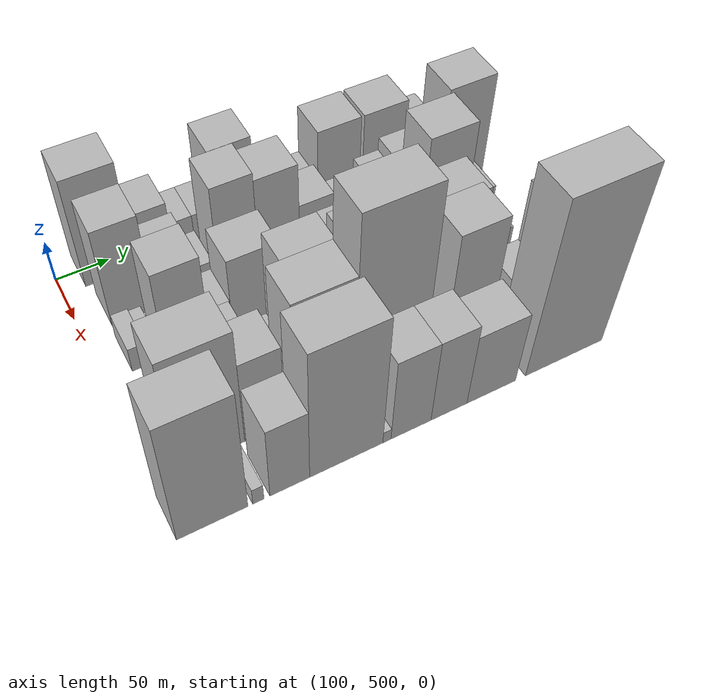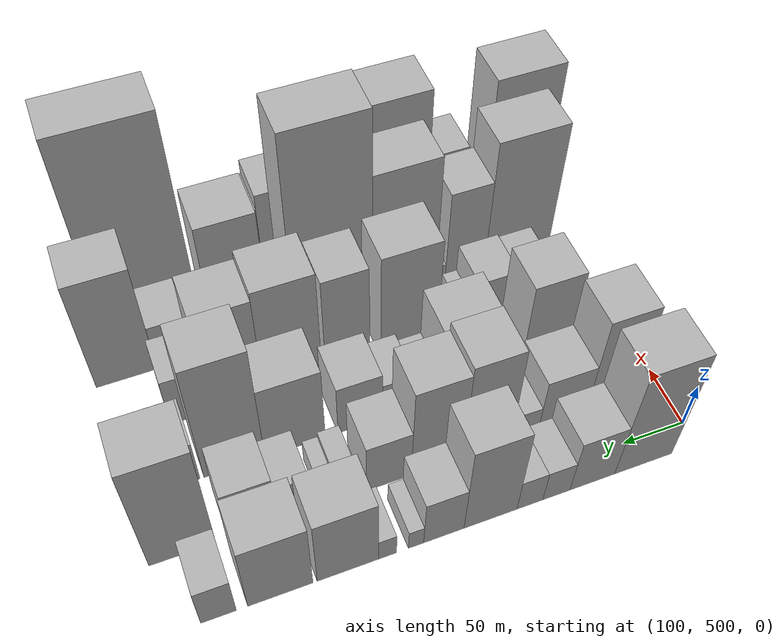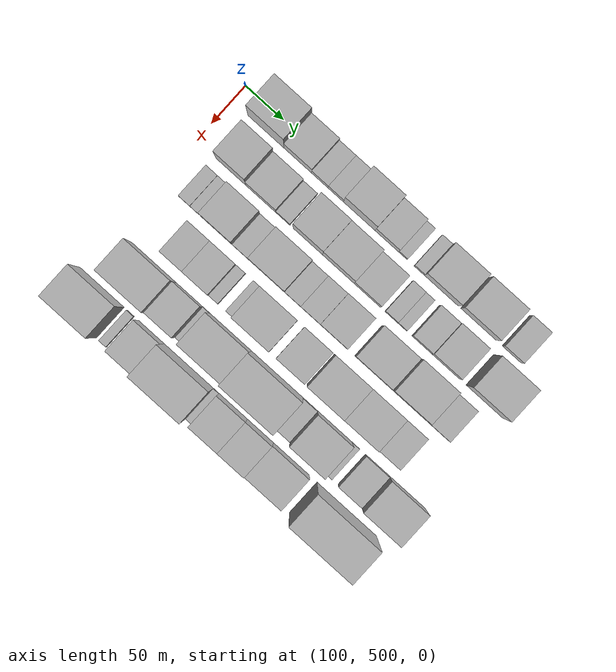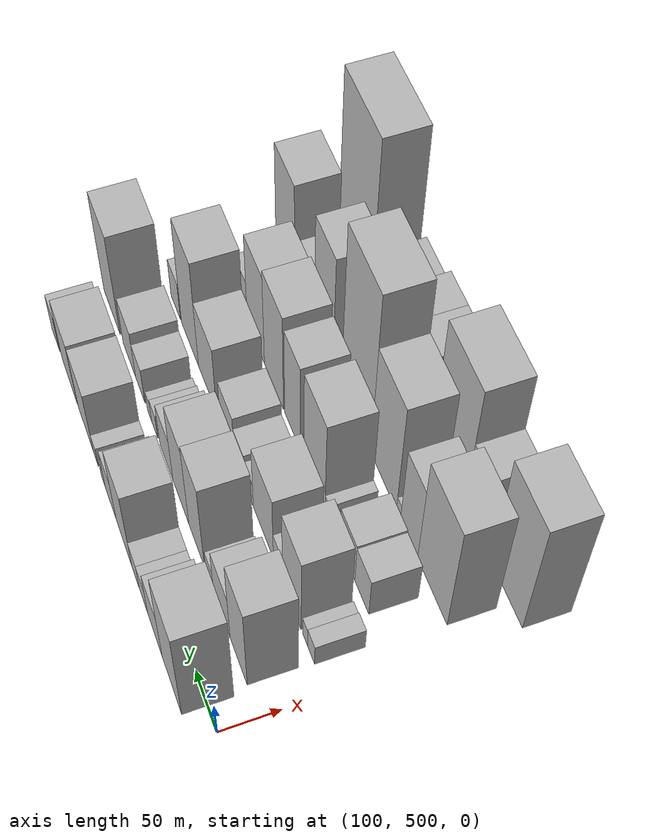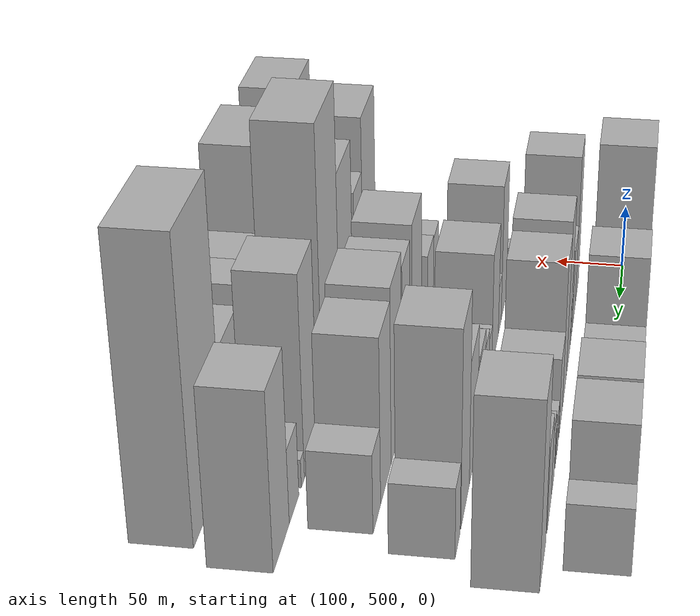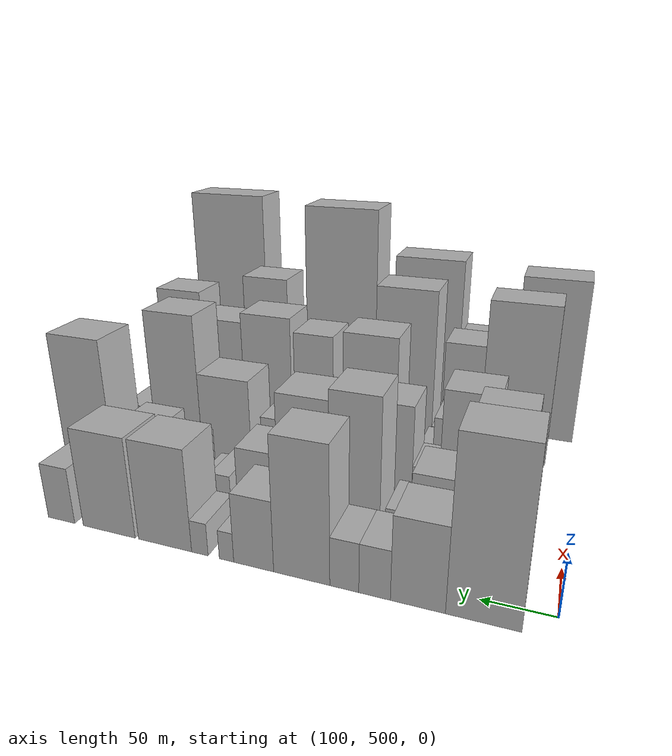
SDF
<sdf version="1.6">
 <world name="default">
  <model name="building_42">
   <static>1</static>
   <pose>100.0000 544.7745 0 0.000000 0.000000 0.000000</pose>
   <link name="link">
    <pose>0 0 66.00 0 0 0</pose>
    <collision name="collision"><geometry><box><size>40.0000 47.5665 132.0000</size></box></geometry></collision>
    <visual name="visual">
     <cast_shadows>0</cast_shadows>
     <geometry><box><size>40.0000 47.5665 132.0000</size></box></geometry>
     <material>
      <script>
       <uri>model://HANNAS_wall/materials/scripts</uri>
       <uri>model://HANNAS_wall/materials/textures</uri>
       <name>vrc/HANNAS_wall</name>
      </script>
     </material>
    </visual>
   </link>
  </model>
  <model name="building_43">
   <static>1</static>
   <pose>100.0000 586.7357 0 0.000000 0.000000 0.000000</pose>
   <link name="link">
    <pose>0 0 33.00 0 0 0</pose>
    <collision name="collision"><geometry><box><size>40.0000 36.3558 66.0000</size></box></geometry></collision>
    <visual name="visual">
     <cast_shadows>0</cast_shadows>
     <geometry><box><size>40.0000 36.3558 66.0000</size></box></geometry>
     <material>
      <script>
       <uri>model://HANNAS_wall/materials/scripts</uri>
       <uri>model://HANNAS_wall/materials/textures</uri>
       <name>vrc/HANNAS_wall</name>
      </script>
     </material>
    </visual>
   </link>
  </model>
  <model name="building_44">
   <static>1</static>
   <pose>100.0000 615.7609 0 0.000000 0.000000 0.000000</pose>
   <link name="link">
    <pose>0 0 19.50 0 0 0</pose>
    <collision name="collision"><geometry><box><size>40.0000 21.6947 39.0000</size></box></geometry></collision>
    <visual name="visual">
     <cast_shadows>0</cast_shadows>
     <geometry><box><size>40.0000 21.6947 39.0000</size></box></geometry>
     <material>
      <script>
       <uri>model://HANNAS_wall/materials/scripts</uri>
       <uri>model://HANNAS_wall/materials/textures</uri>
       <name>vrc/HANNAS_wall</name>
      </script>
     </material>
    </visual>
   </link>
  </model>
  <model name="building_45">
   <static>1</static>
   <pose>100.0000 636.8587 0 0.000000 0.000000 0.000000</pose>
   <link name="link">
    <pose>0 0 19.50 0 0 0</pose>
    <collision name="collision"><geometry><box><size>40.0000 20.5008 39.0000</size></box></geometry></collision>
    <visual name="visual">
     <cast_shadows>0</cast_shadows>
     <geometry><box><size>40.0000 20.5008 39.0000</size></box></geometry>
     <material>
      <script>
       <uri>model://HANNAS_wall/materials/scripts</uri>
       <uri>model://HANNAS_wall/materials/textures</uri>
       <name>vrc/HANNAS_wall</name>
      </script>
     </material>
    </visual>
   </link>
  </model>
  <model name="building_46">
   <static>1</static>
   <pose>100.0000 667.8259 0 0.000000 0.000000 0.000000</pose>
   <link name="link">
    <pose>0 0 54.00 0 0 0</pose>
    <collision name="collision"><geometry><box><size>40.0000 41.4337 108.0000</size></box></geometry></collision>
    <visual name="visual">
     <cast_shadows>0</cast_shadows>
     <geometry><box><size>40.0000 41.4337 108.0000</size></box></geometry>
     <material>
      <script>
       <uri>model://HANNAS_wall/materials/scripts</uri>
       <uri>model://HANNAS_wall/materials/textures</uri>
       <name>vrc/HANNAS_wall</name>
      </script>
     </material>
    </visual>
   </link>
  </model>
  <model name="building_47">
   <static>1</static>
   <pose>100.0000 703.9702 0 0.000000 0.000000 0.000000</pose>
   <link name="link">
    <pose>0 0 28.50 0 0 0</pose>
    <collision name="collision"><geometry><box><size>40.0000 30.8548 57.0000</size></box></geometry></collision>
    <visual name="visual">
     <cast_shadows>0</cast_shadows>
     <geometry><box><size>40.0000 30.8548 57.0000</size></box></geometry>
     <material>
      <script>
       <uri>model://HANNAS_wall/materials/scripts</uri>
       <uri>model://HANNAS_wall/materials/textures</uri>
       <name>vrc/HANNAS_wall</name>
      </script>
     </material>
    </visual>
   </link>
  </model>
  <model name="building_48">
   <static>1</static>
   <pose>100.0000 725.1432 0 0.000000 0.000000 0.000000</pose>
   <link name="link">
    <pose>0 0 12.00 0 0 0</pose>
    <collision name="collision"><geometry><box><size>40.0000 11.4913 24.0000</size></box></geometry></collision>
    <visual name="visual">
     <cast_shadows>0</cast_shadows>
     <geometry><box><size>40.0000 11.4913 24.0000</size></box></geometry>
     <material>
      <script>
       <uri>model://HANNAS_wall/materials/scripts</uri>
       <uri>model://HANNAS_wall/materials/textures</uri>
       <name>vrc/HANNAS_wall</name>
      </script>
     </material>
    </visual>
   </link>
  </model>
  <model name="building_49">
   <static>1</static>
   <pose>100.0000 746.6325 0 0.000000 0.000000 0.000000</pose>
   <link name="link">
    <pose>0 0 13.50 0 0 0</pose>
    <collision name="collision"><geometry><box><size>40.0000 13.4873 27.0000</size></box></geometry></collision>
    <visual name="visual">
     <cast_shadows>0</cast_shadows>
     <geometry><box><size>40.0000 13.4873 27.0000</size></box></geometry>
     <material>
      <script>
       <uri>model://HANNAS_wall/materials/scripts</uri>
       <uri>model://HANNAS_wall/materials/textures</uri>
       <name>vrc/HANNAS_wall</name>
      </script>
     </material>
    </visual>
   </link>
  </model>
  <model name="building_50">
   <static>1</static>
   <pose>100.0000 775.8892 0 0.000000 0.000000 0.000000</pose>
   <link name="link">
    <pose>0 0 42.00 0 0 0</pose>
    <collision name="collision"><geometry><box><size>40.0000 45.0261 84.0000</size></box></geometry></collision>
    <visual name="visual">
     <cast_shadows>0</cast_shadows>
     <geometry><box><size>40.0000 45.0261 84.0000</size></box></geometry>
     <material>
      <script>
       <uri>model://HANNAS_wall/materials/scripts</uri>
       <uri>model://HANNAS_wall/materials/textures</uri>
       <name>vrc/HANNAS_wall</name>
      </script>
     </material>
    </visual>
   </link>
  </model>
  <model name="building_51">
   <static>1</static>
   <pose>100.0000 824.7497 0 0.000000 0.000000 0.000000</pose>
   <link name="link">
    <pose>0 0 42.00 0 0 0</pose>
    <collision name="collision"><geometry><box><size>40.0000 46.6949 84.0000</size></box></geometry></collision>
    <visual name="visual">
     <cast_shadows>0</cast_shadows>
     <geometry><box><size>40.0000 46.6949 84.0000</size></box></geometry>
     <material>
      <script>
       <uri>model://HANNAS_wall/materials/scripts</uri>
       <uri>model://HANNAS_wall/materials/textures</uri>
       <name>vrc/HANNAS_wall</name>
      </script>
     </material>
    </visual>
   </link>
  </model>
  <model name="building_52">
   <static>1</static>
   <pose>100.0000 868.5362 0 0.000000 0.000000 0.000000</pose>
   <link name="link">
    <pose>0 0 24.00 0 0 0</pose>
    <collision name="collision"><geometry><box><size>40.0000 24.8780 48.0000</size></box></geometry></collision>
    <visual name="visual">
     <cast_shadows>0</cast_shadows>
     <geometry><box><size>40.0000 24.8780 48.0000</size></box></geometry>
     <material>
      <script>
       <uri>model://HANNAS_wall/materials/scripts</uri>
       <uri>model://HANNAS_wall/materials/textures</uri>
       <name>vrc/HANNAS_wall</name>
      </script>
     </material>
    </visual>
   </link>
  </model>
  <model name="building_92">
   <static>1</static>
   <pose>152.0000 546.1278 0 0.000000 0.000000 0.000000</pose>
   <link name="link">
    <pose>0 0 60.00 0 0 0</pose>
    <collision name="collision"><geometry><box><size>40.0000 39.5461 120.0000</size></box></geometry></collision>
    <visual name="visual">
     <cast_shadows>0</cast_shadows>
     <geometry><box><size>40.0000 39.5461 120.0000</size></box></geometry>
     <material>
      <script>
       <uri>model://HANNAS_wall/materials/scripts</uri>
       <uri>model://HANNAS_wall/materials/textures</uri>
       <name>vrc/HANNAS_wall</name>
      </script>
     </material>
    </visual>
   </link>
  </model>
  <model name="building_93">
   <static>1</static>
   <pose>152.0000 585.5592 0 0.000000 0.000000 0.000000</pose>
   <link name="link">
    <pose>0 0 33.00 0 0 0</pose>
    <collision name="collision"><geometry><box><size>40.0000 39.3168 66.0000</size></box></geometry></collision>
    <visual name="visual">
     <cast_shadows>0</cast_shadows>
     <geometry><box><size>40.0000 39.3168 66.0000</size></box></geometry>
     <material>
      <script>
       <uri>model://HANNAS_wall/materials/scripts</uri>
       <uri>model://HANNAS_wall/materials/textures</uri>
       <name>vrc/HANNAS_wall</name>
      </script>
     </material>
    </visual>
   </link>
  </model>
  <model name="building_94">
   <static>1</static>
   <pose>152.0000 614.4272 0 0.000000 0.000000 0.000000</pose>
   <link name="link">
    <pose>0 0 16.50 0 0 0</pose>
    <collision name="collision"><geometry><box><size>40.0000 18.4192 33.0000</size></box></geometry></collision>
    <visual name="visual">
     <cast_shadows>0</cast_shadows>
     <geometry><box><size>40.0000 18.4192 33.0000</size></box></geometry>
     <material>
      <script>
       <uri>model://HANNAS_wall/materials/scripts</uri>
       <uri>model://HANNAS_wall/materials/textures</uri>
       <name>vrc/HANNAS_wall</name>
      </script>
     </material>
    </visual>
   </link>
  </model>
  <model name="building_95">
   <static>1</static>
   <pose>152.0000 647.0795 0 0.000000 0.000000 0.000000</pose>
   <link name="link">
    <pose>0 0 60.00 0 0 0</pose>
    <collision name="collision"><geometry><box><size>40.0000 38.8852 120.0000</size></box></geometry></collision>
    <visual name="visual">
     <cast_shadows>0</cast_shadows>
     <geometry><box><size>40.0000 38.8852 120.0000</size></box></geometry>
     <material>
      <script>
       <uri>model://HANNAS_wall/materials/scripts</uri>
       <uri>model://HANNAS_wall/materials/textures</uri>
       <name>vrc/HANNAS_wall</name>
      </script>
     </material>
    </visual>
   </link>
  </model>
  <model name="building_96">
   <static>1</static>
   <pose>152.0000 687.1343 0 0.000000 0.000000 0.000000</pose>
   <link name="link">
    <pose>0 0 55.50 0 0 0</pose>
    <collision name="collision"><geometry><box><size>40.0000 41.2244 111.0000</size></box></geometry></collision>
    <visual name="visual">
     <cast_shadows>0</cast_shadows>
     <geometry><box><size>40.0000 41.2244 111.0000</size></box></geometry>
     <material>
      <script>
       <uri>model://HANNAS_wall/materials/scripts</uri>
       <uri>model://HANNAS_wall/materials/textures</uri>
       <name>vrc/HANNAS_wall</name>
      </script>
     </material>
    </visual>
   </link>
  </model>
  <model name="building_97">
   <static>1</static>
   <pose>152.0000 725.1940 0 0.000000 0.000000 0.000000</pose>
   <link name="link">
    <pose>0 0 30.00 0 0 0</pose>
    <collision name="collision"><geometry><box><size>40.0000 34.8949 60.0000</size></box></geometry></collision>
    <visual name="visual">
     <cast_shadows>0</cast_shadows>
     <geometry><box><size>40.0000 34.8949 60.0000</size></box></geometry>
     <material>
      <script>
       <uri>model://HANNAS_wall/materials/scripts</uri>
       <uri>model://HANNAS_wall/materials/textures</uri>
       <name>vrc/HANNAS_wall</name>
      </script>
     </material>
    </visual>
   </link>
  </model>
  <model name="building_98">
   <static>1</static>
   <pose>152.0000 756.9708 0 0.000000 0.000000 0.000000</pose>
   <link name="link">
    <pose>0 0 16.50 0 0 0</pose>
    <collision name="collision"><geometry><box><size>40.0000 16.6586 33.0000</size></box></geometry></collision>
    <visual name="visual">
     <cast_shadows>0</cast_shadows>
     <geometry><box><size>40.0000 16.6586 33.0000</size></box></geometry>
     <material>
      <script>
       <uri>model://HANNAS_wall/materials/scripts</uri>
       <uri>model://HANNAS_wall/materials/textures</uri>
       <name>vrc/HANNAS_wall</name>
      </script>
     </material>
    </visual>
   </link>
  </model>
  <model name="building_99">
   <static>1</static>
   <pose>152.0000 771.2315 0 0.000000 0.000000 0.000000</pose>
   <link name="link">
    <pose>0 0 13.50 0 0 0</pose>
    <collision name="collision"><geometry><box><size>40.0000 11.8629 27.0000</size></box></geometry></collision>
    <visual name="visual">
     <cast_shadows>0</cast_shadows>
     <geometry><box><size>40.0000 11.8629 27.0000</size></box></geometry>
     <material>
      <script>
       <uri>model://HANNAS_wall/materials/scripts</uri>
       <uri>model://HANNAS_wall/materials/textures</uri>
       <name>vrc/HANNAS_wall</name>
      </script>
     </material>
    </visual>
   </link>
  </model>
  <model name="building_100">
   <static>1</static>
   <pose>152.0000 797.1972 0 0.000000 0.000000 0.000000</pose>
   <link name="link">
    <pose>0 0 24.00 0 0 0</pose>
    <collision name="collision"><geometry><box><size>40.0000 26.0684 48.0000</size></box></geometry></collision>
    <visual name="visual">
     <cast_shadows>0</cast_shadows>
     <geometry><box><size>40.0000 26.0684 48.0000</size></box></geometry>
     <material>
      <script>
       <uri>model://HANNAS_wall/materials/scripts</uri>
       <uri>model://HANNAS_wall/materials/textures</uri>
       <name>vrc/HANNAS_wall</name>
      </script>
     </material>
    </visual>
   </link>
  </model>
  <model name="building_101">
   <static>1</static>
   <pose>152.0000 828.4185 0 0.000000 0.000000 0.000000</pose>
   <link name="link">
    <pose>0 0 31.50 0 0 0</pose>
    <collision name="collision"><geometry><box><size>40.0000 36.3743 63.0000</size></box></geometry></collision>
    <visual name="visual">
     <cast_shadows>0</cast_shadows>
     <geometry><box><size>40.0000 36.3743 63.0000</size></box></geometry>
     <material>
      <script>
       <uri>model://HANNAS_wall/materials/scripts</uri>
       <uri>model://HANNAS_wall/materials/textures</uri>
       <name>vrc/HANNAS_wall</name>
      </script>
     </material>
    </visual>
   </link>
  </model>
  <model name="building_102">
   <static>1</static>
   <pose>152.0000 879.6352 0 0.000000 0.000000 0.000000</pose>
   <link name="link">
    <pose>0 0 66.00 0 0 0</pose>
    <collision name="collision"><geometry><box><size>40.0000 48.0590 132.0000</size></box></geometry></collision>
    <visual name="visual">
     <cast_shadows>0</cast_shadows>
     <geometry><box><size>40.0000 48.0590 132.0000</size></box></geometry>
     <material>
      <script>
       <uri>model://HANNAS_wall/materials/scripts</uri>
       <uri>model://HANNAS_wall/materials/textures</uri>
       <name>vrc/HANNAS_wall</name>
      </script>
     </material>
    </visual>
   </link>
  </model>
  <model name="building_144">
   <static>1</static>
   <pose>204.0000 532.4353 0 0.000000 0.000000 0.000000</pose>
   <link name="link">
    <pose>0 0 15.00 0 0 0</pose>
    <collision name="collision"><geometry><box><size>40.0000 15.2002 30.0000</size></box></geometry></collision>
    <visual name="visual">
     <cast_shadows>0</cast_shadows>
     <geometry><box><size>40.0000 15.2002 30.0000</size></box></geometry>
     <material>
      <script>
       <uri>model://HANNAS_wall/materials/scripts</uri>
       <uri>model://HANNAS_wall/materials/textures</uri>
       <name>vrc/HANNAS_wall</name>
      </script>
     </material>
    </visual>
   </link>
  </model>
  <model name="building_145">
   <static>1</static>
   <pose>204.0000 545.6412 0 0.000000 0.000000 0.000000</pose>
   <link name="link">
    <pose>0 0 13.50 0 0 0</pose>
    <collision name="collision"><geometry><box><size>40.0000 11.2116 27.0000</size></box></geometry></collision>
    <visual name="visual">
     <cast_shadows>0</cast_shadows>
     <geometry><box><size>40.0000 11.2116 27.0000</size></box></geometry>
     <material>
      <script>
       <uri>model://HANNAS_wall/materials/scripts</uri>
       <uri>model://HANNAS_wall/materials/textures</uri>
       <name>vrc/HANNAS_wall</name>
      </script>
     </material>
    </visual>
   </link>
  </model>
  <model name="building_146">
   <static>1</static>
   <pose>204.0000 574.9193 0 0.000000 0.000000 0.000000</pose>
   <link name="link">
    <pose>0 0 54.00 0 0 0</pose>
    <collision name="collision"><geometry><box><size>40.0000 41.3444 108.0000</size></box></geometry></collision>
    <visual name="visual">
     <cast_shadows>0</cast_shadows>
     <geometry><box><size>40.0000 41.3444 108.0000</size></box></geometry>
     <material>
      <script>
       <uri>model://HANNAS_wall/materials/scripts</uri>
       <uri>model://HANNAS_wall/materials/textures</uri>
       <name>vrc/HANNAS_wall</name>
      </script>
     </material>
    </visual>
   </link>
  </model>
  <model name="building_147">
   <static>1</static>
   <pose>204.0000 606.1920 0 0.000000 0.000000 0.000000</pose>
   <link name="link">
    <pose>0 0 19.50 0 0 0</pose>
    <collision name="collision"><geometry><box><size>40.0000 21.2011 39.0000</size></box></geometry></collision>
    <visual name="visual">
     <cast_shadows>0</cast_shadows>
     <geometry><box><size>40.0000 21.2011 39.0000</size></box></geometry>
     <material>
      <script>
       <uri>model://HANNAS_wall/materials/scripts</uri>
       <uri>model://HANNAS_wall/materials/textures</uri>
       <name>vrc/HANNAS_wall</name>
      </script>
     </material>
    </visual>
   </link>
  </model>
  <model name="building_148">
   <static>1</static>
   <pose>204.0000 640.3165 0 0.000000 0.000000 0.000000</pose>
   <link name="link">
    <pose>0 0 45.00 0 0 0</pose>
    <collision name="collision"><geometry><box><size>40.0000 47.0480 90.0000</size></box></geometry></collision>
    <visual name="visual">
     <cast_shadows>0</cast_shadows>
     <geometry><box><size>40.0000 47.0480 90.0000</size></box></geometry>
     <material>
      <script>
       <uri>model://HANNAS_wall/materials/scripts</uri>
       <uri>model://HANNAS_wall/materials/textures</uri>
       <name>vrc/HANNAS_wall</name>
      </script>
     </material>
    </visual>
   </link>
  </model>
  <model name="building_149">
   <static>1</static>
   <pose>204.0000 674.3682 0 0.000000 0.000000 0.000000</pose>
   <link name="link">
    <pose>0 0 18.00 0 0 0</pose>
    <collision name="collision"><geometry><box><size>40.0000 21.0554 36.0000</size></box></geometry></collision>
    <visual name="visual">
     <cast_shadows>0</cast_shadows>
     <geometry><box><size>40.0000 21.0554 36.0000</size></box></geometry>
     <material>
      <script>
       <uri>model://HANNAS_wall/materials/scripts</uri>
       <uri>model://HANNAS_wall/materials/textures</uri>
       <name>vrc/HANNAS_wall</name>
      </script>
     </material>
    </visual>
   </link>
  </model>
  <model name="building_150">
   <static>1</static>
   <pose>204.0000 697.6759 0 0.000000 0.000000 0.000000</pose>
   <link name="link">
    <pose>0 0 22.50 0 0 0</pose>
    <collision name="collision"><geometry><box><size>40.0000 25.5600 45.0000</size></box></geometry></collision>
    <visual name="visual">
     <cast_shadows>0</cast_shadows>
     <geometry><box><size>40.0000 25.5600 45.0000</size></box></geometry>
     <material>
      <script>
       <uri>model://HANNAS_wall/materials/scripts</uri>
       <uri>model://HANNAS_wall/materials/textures</uri>
       <name>vrc/HANNAS_wall</name>
      </script>
     </material>
    </visual>
   </link>
  </model>
  <model name="building_151">
   <static>1</static>
   <pose>204.0000 728.1979 0 0.000000 0.000000 0.000000</pose>
   <link name="link">
    <pose>0 0 30.00 0 0 0</pose>
    <collision name="collision"><geometry><box><size>40.0000 35.4840 60.0000</size></box></geometry></collision>
    <visual name="visual">
     <cast_shadows>0</cast_shadows>
     <geometry><box><size>40.0000 35.4840 60.0000</size></box></geometry>
     <material>
      <script>
       <uri>model://HANNAS_wall/materials/scripts</uri>
       <uri>model://HANNAS_wall/materials/textures</uri>
       <name>vrc/HANNAS_wall</name>
      </script>
     </material>
    </visual>
   </link>
  </model>
  <model name="building_152">
   <static>1</static>
   <pose>204.0000 779.5490 0 0.000000 0.000000 0.000000</pose>
   <link name="link">
    <pose>0 0 45.00 0 0 0</pose>
    <collision name="collision"><geometry><box><size>40.0000 47.2181 90.0000</size></box></geometry></collision>
    <visual name="visual">
     <cast_shadows>0</cast_shadows>
     <geometry><box><size>40.0000 47.2181 90.0000</size></box></geometry>
     <material>
      <script>
       <uri>model://HANNAS_wall/materials/scripts</uri>
       <uri>model://HANNAS_wall/materials/textures</uri>
       <name>vrc/HANNAS_wall</name>
      </script>
     </material>
    </visual>
   </link>
  </model>
  <model name="building_153">
   <static>1</static>
   <pose>204.0000 826.4245 0 0.000000 0.000000 0.000000</pose>
   <link name="link">
    <pose>0 0 70.50 0 0 0</pose>
    <collision name="collision"><geometry><box><size>40.0000 46.5328 141.0000</size></box></geometry></collision>
    <visual name="visual">
     <cast_shadows>0</cast_shadows>
     <geometry><box><size>40.0000 46.5328 141.0000</size></box></geometry>
     <material>
      <script>
       <uri>model://HANNAS_wall/materials/scripts</uri>
       <uri>model://HANNAS_wall/materials/textures</uri>
       <name>vrc/HANNAS_wall</name>
      </script>
     </material>
    </visual>
   </link>
  </model>
  <model name="building_154">
   <static>1</static>
   <pose>204.0000 865.8947 0 0.000000 0.000000 0.000000</pose>
   <link name="link">
    <pose>0 0 25.50 0 0 0</pose>
    <collision name="collision"><geometry><box><size>40.0000 26.4077 51.0000</size></box></geometry></collision>
    <visual name="visual">
     <cast_shadows>0</cast_shadows>
     <geometry><box><size>40.0000 26.4077 51.0000</size></box></geometry>
     <material>
      <script>
       <uri>model://HANNAS_wall/materials/scripts</uri>
       <uri>model://HANNAS_wall/materials/textures</uri>
       <name>vrc/HANNAS_wall</name>
      </script>
     </material>
    </visual>
   </link>
  </model>
  <model name="building_197">
   <static>1</static>
   <pose>256.0000 563.2254 0 0.000000 0.000000 0.000000</pose>
   <link name="link">
    <pose>0 0 27.00 0 0 0</pose>
    <collision name="collision"><geometry><box><size>40.0000 29.3551 54.0000</size></box></geometry></collision>
    <visual name="visual">
     <cast_shadows>0</cast_shadows>
     <geometry><box><size>40.0000 29.3551 54.0000</size></box></geometry>
     <material>
      <script>
       <uri>model://HANNAS_wall/materials/scripts</uri>
       <uri>model://HANNAS_wall/materials/textures</uri>
       <name>vrc/HANNAS_wall</name>
      </script>
     </material>
    </visual>
   </link>
  </model>
  <model name="building_198">
   <static>1</static>
   <pose>256.0000 594.5798 0 0.000000 0.000000 0.000000</pose>
   <link name="link">
    <pose>0 0 28.50 0 0 0</pose>
    <collision name="collision"><geometry><box><size>40.0000 33.3536 57.0000</size></box></geometry></collision>
    <visual name="visual">
     <cast_shadows>0</cast_shadows>
     <geometry><box><size>40.0000 33.3536 57.0000</size></box></geometry>
     <material>
      <script>
       <uri>model://HANNAS_wall/materials/scripts</uri>
       <uri>model://HANNAS_wall/materials/textures</uri>
       <name>vrc/HANNAS_wall</name>
      </script>
     </material>
    </visual>
   </link>
  </model>
  <model name="building_199">
   <static>1</static>
   <pose>256.0000 617.4111 0 0.000000 0.000000 0.000000</pose>
   <link name="link">
    <pose>0 0 13.50 0 0 0</pose>
    <collision name="collision"><geometry><box><size>40.0000 12.3089 27.0000</size></box></geometry></collision>
    <visual name="visual">
     <cast_shadows>0</cast_shadows>
     <geometry><box><size>40.0000 12.3089 27.0000</size></box></geometry>
     <material>
      <script>
       <uri>model://HANNAS_wall/materials/scripts</uri>
       <uri>model://HANNAS_wall/materials/textures</uri>
       <name>vrc/HANNAS_wall</name>
      </script>
     </material>
    </visual>
   </link>
  </model>
  <model name="building_200">
   <static>1</static>
   <pose>256.0000 638.6388 0 0.000000 0.000000 0.000000</pose>
   <link name="link">
    <pose>0 0 10.50 0 0 0</pose>
    <collision name="collision"><geometry><box><size>40.0000 10.1466 21.0000</size></box></geometry></collision>
    <visual name="visual">
     <cast_shadows>0</cast_shadows>
     <geometry><box><size>40.0000 10.1466 21.0000</size></box></geometry>
     <material>
      <script>
       <uri>model://HANNAS_wall/materials/scripts</uri>
       <uri>model://HANNAS_wall/materials/textures</uri>
       <name>vrc/HANNAS_wall</name>
      </script>
     </material>
    </visual>
   </link>
  </model>
  <model name="building_201">
   <static>1</static>
   <pose>256.0000 667.7387 0 0.000000 0.000000 0.000000</pose>
   <link name="link">
    <pose>0 0 61.50 0 0 0</pose>
    <collision name="collision"><geometry><box><size>40.0000 48.0533 123.0000</size></box></geometry></collision>
    <visual name="visual">
     <cast_shadows>0</cast_shadows>
     <geometry><box><size>40.0000 48.0533 123.0000</size></box></geometry>
     <material>
      <script>
       <uri>model://HANNAS_wall/materials/scripts</uri>
       <uri>model://HANNAS_wall/materials/textures</uri>
       <name>vrc/HANNAS_wall</name>
      </script>
     </material>
    </visual>
   </link>
  </model>
  <model name="building_202">
   <static>1</static>
   <pose>256.0000 718.9880 0 0.000000 0.000000 0.000000</pose>
   <link name="link">
    <pose>0 0 58.50 0 0 0</pose>
    <collision name="collision"><geometry><box><size>40.0000 36.4452 117.0000</size></box></geometry></collision>
    <visual name="visual">
     <cast_shadows>0</cast_shadows>
     <geometry><box><size>40.0000 36.4452 117.0000</size></box></geometry>
     <material>
      <script>
       <uri>model://HANNAS_wall/materials/scripts</uri>
       <uri>model://HANNAS_wall/materials/textures</uri>
       <name>vrc/HANNAS_wall</name>
      </script>
     </material>
    </visual>
   </link>
  </model>
  <model name="building_203">
   <static>1</static>
   <pose>256.0000 763.7376 0 0.000000 0.000000 0.000000</pose>
   <link name="link">
    <pose>0 0 64.50 0 0 0</pose>
    <collision name="collision"><geometry><box><size>40.0000 47.0540 129.0000</size></box></geometry></collision>
    <visual name="visual">
     <cast_shadows>0</cast_shadows>
     <geometry><box><size>40.0000 47.0540 129.0000</size></box></geometry>
     <material>
      <script>
       <uri>model://HANNAS_wall/materials/scripts</uri>
       <uri>model://HANNAS_wall/materials/textures</uri>
       <name>vrc/HANNAS_wall</name>
      </script>
     </material>
    </visual>
   </link>
  </model>
  <model name="building_204">
   <static>1</static>
   <pose>256.0000 809.2545 0 0.000000 0.000000 0.000000</pose>
   <link name="link">
    <pose>0 0 60.00 0 0 0</pose>
    <collision name="collision"><geometry><box><size>40.0000 43.9799 120.0000</size></box></geometry></collision>
    <visual name="visual">
     <cast_shadows>0</cast_shadows>
     <geometry><box><size>40.0000 43.9799 120.0000</size></box></geometry>
     <material>
      <script>
       <uri>model://HANNAS_wall/materials/scripts</uri>
       <uri>model://HANNAS_wall/materials/textures</uri>
       <name>vrc/HANNAS_wall</name>
      </script>
     </material>
    </visual>
   </link>
  </model>
  <model name="building_205">
   <static>1</static>
   <pose>256.0000 846.2924 0 0.000000 0.000000 0.000000</pose>
   <link name="link">
    <pose>0 0 28.50 0 0 0</pose>
    <collision name="collision"><geometry><box><size>40.0000 30.0959 57.0000</size></box></geometry></collision>
    <visual name="visual">
     <cast_shadows>0</cast_shadows>
     <geometry><box><size>40.0000 30.0959 57.0000</size></box></geometry>
     <material>
      <script>
       <uri>model://HANNAS_wall/materials/scripts</uri>
       <uri>model://HANNAS_wall/materials/textures</uri>
       <name>vrc/HANNAS_wall</name>
      </script>
     </material>
    </visual>
   </link>
  </model>
  <model name="building_243">
   <static>1</static>
   <pose>308.0000 550.0282 0 0.000000 0.000000 0.000000</pose>
   <link name="link">
    <pose>0 0 73.50 0 0 0</pose>
    <collision name="collision"><geometry><box><size>40.0000 58.7847 147.0000</size></box></geometry></collision>
    <visual name="visual">
     <cast_shadows>0</cast_shadows>
     <geometry><box><size>40.0000 58.7847 147.0000</size></box></geometry>
     <material>
      <script>
       <uri>model://HANNAS_wall/materials/scripts</uri>
       <uri>model://HANNAS_wall/materials/textures</uri>
       <name>vrc/HANNAS_wall</name>
      </script>
     </material>
    </visual>
   </link>
  </model>
  <model name="building_244">
   <static>1</static>
   <pose>308.0000 597.0762 0 0.000000 0.000000 0.000000</pose>
   <link name="link">
    <pose>0 0 52.50 0 0 0</pose>
    <collision name="collision"><geometry><box><size>40.0000 35.3113 105.0000</size></box></geometry></collision>
    <visual name="visual">
     <cast_shadows>0</cast_shadows>
     <geometry><box><size>40.0000 35.3113 105.0000</size></box></geometry>
     <material>
      <script>
       <uri>model://HANNAS_wall/materials/scripts</uri>
       <uri>model://HANNAS_wall/materials/textures</uri>
       <name>vrc/HANNAS_wall</name>
      </script>
     </material>
    </visual>
   </link>
  </model>
  <model name="building_245">
   <static>1</static>
   <pose>308.0000 619.0148 0 0.000000 0.000000 0.000000</pose>
   <link name="link">
    <pose>0 0 10.50 0 0 0</pose>
    <collision name="collision"><geometry><box><size>40.0000 8.5657 21.0000</size></box></geometry></collision>
    <visual name="visual">
     <cast_shadows>0</cast_shadows>
     <geometry><box><size>40.0000 8.5657 21.0000</size></box></geometry>
     <material>
      <script>
       <uri>model://HANNAS_wall/materials/scripts</uri>
       <uri>model://HANNAS_wall/materials/textures</uri>
       <name>vrc/HANNAS_wall</name>
      </script>
     </material>
    </visual>
   </link>
  </model>
  <model name="building_246">
   <static>1</static>
   <pose>308.0000 650.8421 0 0.000000 0.000000 0.000000</pose>
   <link name="link">
    <pose>0 0 75.00 0 0 0</pose>
    <collision name="collision"><geometry><box><size>40.0000 55.0889 150.0000</size></box></geometry></collision>
    <visual name="visual">
     <cast_shadows>0</cast_shadows>
     <geometry><box><size>40.0000 55.0889 150.0000</size></box></geometry>
     <material>
      <script>
       <uri>model://HANNAS_wall/materials/scripts</uri>
       <uri>model://HANNAS_wall/materials/textures</uri>
       <name>vrc/HANNAS_wall</name>
      </script>
     </material>
    </visual>
   </link>
  </model>
  <model name="building_247">
   <static>1</static>
   <pose>308.0000 711.9428 0 0.000000 0.000000 0.000000</pose>
   <link name="link">
    <pose>0 0 108.00 0 0 0</pose>
    <collision name="collision"><geometry><box><size>40.0000 67.1124 216.0000</size></box></geometry></collision>
    <visual name="visual">
     <cast_shadows>0</cast_shadows>
     <geometry><box><size>40.0000 67.1124 216.0000</size></box></geometry>
     <material>
      <script>
       <uri>model://HANNAS_wall/materials/scripts</uri>
       <uri>model://HANNAS_wall/materials/textures</uri>
       <name>vrc/HANNAS_wall</name>
      </script>
     </material>
    </visual>
   </link>
  </model>
  <model name="building_248">
   <static>1</static>
   <pose>308.0000 755.2844 0 0.000000 0.000000 0.000000</pose>
   <link name="link">
    <pose>0 0 19.50 0 0 0</pose>
    <collision name="collision"><geometry><box><size>40.0000 19.5709 39.0000</size></box></geometry></collision>
    <visual name="visual">
     <cast_shadows>0</cast_shadows>
     <geometry><box><size>40.0000 19.5709 39.0000</size></box></geometry>
     <material>
      <script>
       <uri>model://HANNAS_wall/materials/scripts</uri>
       <uri>model://HANNAS_wall/materials/textures</uri>
       <name>vrc/HANNAS_wall</name>
      </script>
     </material>
    </visual>
   </link>
  </model>
  <model name="building_249">
   <static>1</static>
   <pose>308.0000 787.5312 0 0.000000 0.000000 0.000000</pose>
   <link name="link">
    <pose>0 0 73.50 0 0 0</pose>
    <collision name="collision"><geometry><box><size>40.0000 44.9226 147.0000</size></box></geometry></collision>
    <visual name="visual">
     <cast_shadows>0</cast_shadows>
     <geometry><box><size>40.0000 44.9226 147.0000</size></box></geometry>
     <material>
      <script>
       <uri>model://HANNAS_wall/materials/scripts</uri>
       <uri>model://HANNAS_wall/materials/textures</uri>
       <name>vrc/HANNAS_wall</name>
      </script>
     </material>
    </visual>
   </link>
  </model>
  <model name="building_250">
   <static>1</static>
   <pose>308.0000 815.1181 0 0.000000 0.000000 0.000000</pose>
   <link name="link">
    <pose>0 0 10.50 0 0 0</pose>
    <collision name="collision"><geometry><box><size>40.0000 10.2512 21.0000</size></box></geometry></collision>
    <visual name="visual">
     <cast_shadows>0</cast_shadows>
     <geometry><box><size>40.0000 10.2512 21.0000</size></box></geometry>
     <material>
      <script>
       <uri>model://HANNAS_wall/materials/scripts</uri>
       <uri>model://HANNAS_wall/materials/textures</uri>
       <name>vrc/HANNAS_wall</name>
      </script>
     </material>
    </visual>
   </link>
  </model>
  <model name="building_251">
   <static>1</static>
   <pose>308.0000 843.4362 0 0.000000 0.000000 0.000000</pose>
   <link name="link">
    <pose>0 0 27.00 0 0 0</pose>
    <collision name="collision"><geometry><box><size>40.0000 30.3851 54.0000</size></box></geometry></collision>
    <visual name="visual">
     <cast_shadows>0</cast_shadows>
     <geometry><box><size>40.0000 30.3851 54.0000</size></box></geometry>
     <material>
      <script>
       <uri>model://HANNAS_wall/materials/scripts</uri>
       <uri>model://HANNAS_wall/materials/textures</uri>
       <name>vrc/HANNAS_wall</name>
      </script>
     </material>
    </visual>
   </link>
  </model>
  <model name="building_252">
   <static>1</static>
   <pose>308.0000 882.5863 0 0.000000 0.000000 0.000000</pose>
   <link name="link">
    <pose>0 0 63.00 0 0 0</pose>
    <collision name="collision"><geometry><box><size>40.0000 47.9152 126.0000</size></box></geometry></collision>
    <visual name="visual">
     <cast_shadows>0</cast_shadows>
     <geometry><box><size>40.0000 47.9152 126.0000</size></box></geometry>
     <material>
      <script>
       <uri>model://HANNAS_wall/materials/scripts</uri>
       <uri>model://HANNAS_wall/materials/textures</uri>
       <name>vrc/HANNAS_wall</name>
      </script>
     </material>
    </visual>
   </link>
  </model>
  <model name="building_297">
   <static>1</static>
   <pose>360.0000 528.4818 0 0.000000 0.000000 0.000000</pose>
   <link name="link">
    <pose>0 0 78.00 0 0 0</pose>
    <collision name="collision"><geometry><box><size>40.0000 58.4326 156.0000</size></box></geometry></collision>
    <visual name="visual">
     <cast_shadows>0</cast_shadows>
     <geometry><box><size>40.0000 58.4326 156.0000</size></box></geometry>
     <material>
      <script>
       <uri>model://HANNAS_wall/materials/scripts</uri>
       <uri>model://HANNAS_wall/materials/textures</uri>
       <name>vrc/HANNAS_wall</name>
      </script>
     </material>
    </visual>
   </link>
  </model>
  <model name="building_298">
   <static>1</static>
   <pose>360.0000 566.4241 0 0.000000 0.000000 0.000000</pose>
   <link name="link">
    <pose>0 0 10.50 0 0 0</pose>
    <collision name="collision"><geometry><box><size>40.0000 9.4522 21.0000</size></box></geometry></collision>
    <visual name="visual">
     <cast_shadows>0</cast_shadows>
     <geometry><box><size>40.0000 9.4522 21.0000</size></box></geometry>
     <material>
      <script>
       <uri>model://HANNAS_wall/materials/scripts</uri>
       <uri>model://HANNAS_wall/materials/textures</uri>
       <name>vrc/HANNAS_wall</name>
      </script>
     </material>
    </visual>
   </link>
  </model>
  <model name="building_299">
   <static>1</static>
   <pose>360.0000 593.2085 0 0.000000 0.000000 0.000000</pose>
   <link name="link">
    <pose>0 0 46.50 0 0 0</pose>
    <collision name="collision"><geometry><box><size>40.0000 34.1165 93.0000</size></box></geometry></collision>
    <visual name="visual">
     <cast_shadows>0</cast_shadows>
     <geometry><box><size>40.0000 34.1165 93.0000</size></box></geometry>
     <material>
      <script>
       <uri>model://HANNAS_wall/materials/scripts</uri>
       <uri>model://HANNAS_wall/materials/textures</uri>
       <name>vrc/HANNAS_wall</name>
      </script>
     </material>
    </visual>
   </link>
  </model>
  <model name="building_300">
   <static>1</static>
   <pose>360.0000 642.7775 0 0.000000 0.000000 0.000000</pose>
   <link name="link">
    <pose>0 0 82.50 0 0 0</pose>
    <collision name="collision"><geometry><box><size>40.0000 65.0215 165.0000</size></box></geometry></collision>
    <visual name="visual">
     <cast_shadows>0</cast_shadows>
     <geometry><box><size>40.0000 65.0215 165.0000</size></box></geometry>
     <material>
      <script>
       <uri>model://HANNAS_wall/materials/scripts</uri>
       <uri>model://HANNAS_wall/materials/textures</uri>
       <name>vrc/HANNAS_wall</name>
      </script>
     </material>
    </visual>
   </link>
  </model>
  <model name="building_301">
   <static>1</static>
   <pose>360.0000 678.9952 0 0.000000 0.000000 0.000000</pose>
   <link name="link">
    <pose>0 0 7.50 0 0 0</pose>
    <collision name="collision"><geometry><box><size>40.0000 7.4138 15.0000</size></box></geometry></collision>
    <visual name="visual">
     <cast_shadows>0</cast_shadows>
     <geometry><box><size>40.0000 7.4138 15.0000</size></box></geometry>
     <material>
      <script>
       <uri>model://HANNAS_wall/materials/scripts</uri>
       <uri>model://HANNAS_wall/materials/textures</uri>
       <name>vrc/HANNAS_wall</name>
      </script>
     </material>
    </visual>
   </link>
  </model>
  <model name="building_302">
   <static>1</static>
   <pose>360.0000 701.2774 0 0.000000 0.000000 0.000000</pose>
   <link name="link">
    <pose>0 0 52.50 0 0 0</pose>
    <collision name="collision"><geometry><box><size>40.0000 37.1506 105.0000</size></box></geometry></collision>
    <visual name="visual">
     <cast_shadows>0</cast_shadows>
     <geometry><box><size>40.0000 37.1506 105.0000</size></box></geometry>
     <material>
      <script>
       <uri>model://HANNAS_wall/materials/scripts</uri>
       <uri>model://HANNAS_wall/materials/textures</uri>
       <name>vrc/HANNAS_wall</name>
      </script>
     </material>
    </visual>
   </link>
  </model>
  <model name="building_303">
   <static>1</static>
   <pose>360.0000 736.9686 0 0.000000 0.000000 0.000000</pose>
   <link name="link">
    <pose>0 0 52.50 0 0 0</pose>
    <collision name="collision"><geometry><box><size>40.0000 34.2319 105.0000</size></box></geometry></collision>
    <visual name="visual">
     <cast_shadows>0</cast_shadows>
     <geometry><box><size>40.0000 34.2319 105.0000</size></box></geometry>
     <material>
      <script>
       <uri>model://HANNAS_wall/materials/scripts</uri>
       <uri>model://HANNAS_wall/materials/textures</uri>
       <name>vrc/HANNAS_wall</name>
      </script>
     </material>
    </visual>
   </link>
  </model>
  <model name="building_304">
   <static>1</static>
   <pose>360.0000 777.8271 0 0.000000 0.000000 0.000000</pose>
   <link name="link">
    <pose>0 0 45.00 0 0 0</pose>
    <collision name="collision"><geometry><box><size>40.0000 47.4851 90.0000</size></box></geometry></collision>
    <visual name="visual">
     <cast_shadows>0</cast_shadows>
     <geometry><box><size>40.0000 47.4851 90.0000</size></box></geometry>
     <material>
      <script>
       <uri>model://HANNAS_wall/materials/scripts</uri>
       <uri>model://HANNAS_wall/materials/textures</uri>
       <name>vrc/HANNAS_wall</name>
      </script>
     </material>
    </visual>
   </link>
  </model>
  <model name="building_305">
   <static>1</static>
   <pose>360.0000 850.7125 0 0.000000 0.000000 0.000000</pose>
   <link name="link">
    <pose>0 0 106.50 0 0 0</pose>
    <collision name="collision"><geometry><box><size>40.0000 78.2856 213.0000</size></box></geometry></collision>
    <visual name="visual">
     <cast_shadows>0</cast_shadows>
     <geometry><box><size>40.0000 78.2856 213.0000</size></box></geometry>
     <material>
      <script>
       <uri>model://HANNAS_wall/materials/scripts</uri>
       <uri>model://HANNAS_wall/materials/textures</uri>
       <name>vrc/HANNAS_wall</name>
      </script>
     </material>
    </visual>
   </link>
  </model>
 </world>
</sdf>
